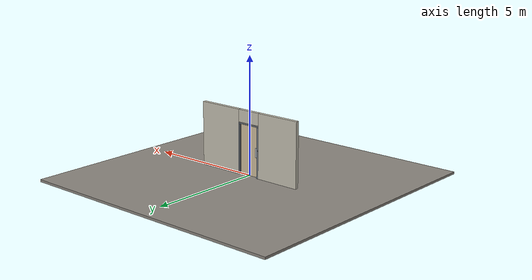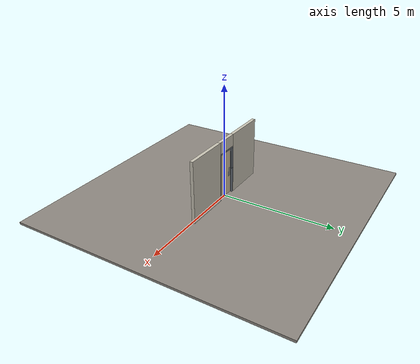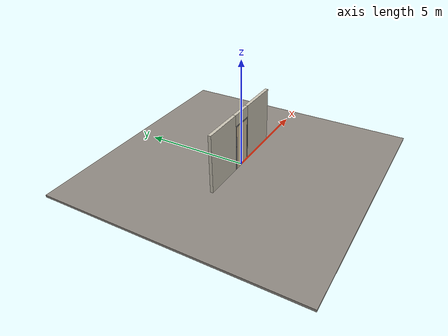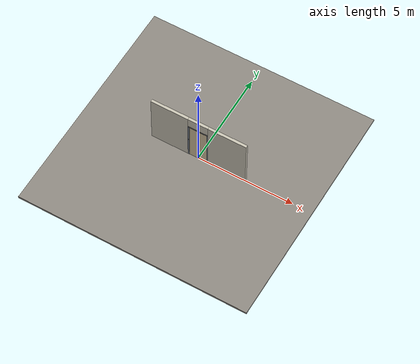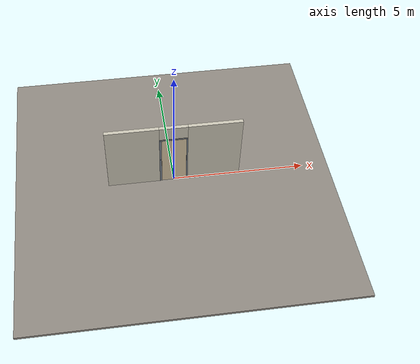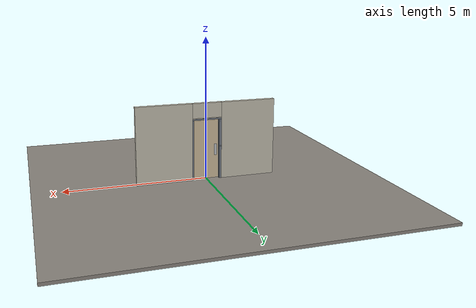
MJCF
<?xml version="1.0" ?>
<mujoco model="db0539_swing_single_minimal">
  <compiler angle="radian" meshdir="../../hardware" texturedir="../../textures" autolimits="true" inertiafromgeom="false"/>
  <option timestep="0.002" integrator="implicitfast" cone="elliptic" impratio="10" noslip_iterations="3">
    <flag multiccd="enable"/>
  </option>
  <size memory="16M"/>
  <default>
    <geom condim="4" solref="0.005 1" solimp="0.95 0.99 0.001"/>
    <joint solreflimit="0.005 1" solimplimit="0.95 0.99 0.001"/>
    <tendon solreflimit="0.005 1"/>
    <equality solref="0.002 1"/>
  </default>
  <visual>
    <headlight ambient="0.4 0.4 0.4" diffuse="0.7 0.7 0.7" specular="0.2 0.2 0.2"/>
    <quality shadowsize="4096"/>
    <map znear="0.01" zfar="60"/>
  </visual>
  <asset>
    <material name="mat_floor" rgba="0.55 0.53 0.5 1" specular="0.2" shininess="0.15" reflectance="0"/>
    <material name="mat_wall" rgba="0.78 0.76 0.7 1" specular="0.2" shininess="0.1" reflectance="0"/>
    <material name="mat_leaf" rgba="0.82 0.75 0.62 1" specular="0.23" shininess="0.45" reflectance="0.02"/>
    <material name="mat_hinge" rgba="0.65 0.66 0.68 1" specular="0.74" shininess="0.5" reflectance="0.36"/>
    <material name="mat_op_stainless" rgba="0.75 0.76 0.77 1" specular="0.8" shininess="0.65" reflectance="0.4"/>
    <material name="mat_deadbolt" rgba="0.85 0.66 0.3 1" specular="0.8" shininess="0.75" reflectance="0.4"/>
    <material name="mat_frame" rgba="0.45 0.48 0.52 1" specular="0.32" shininess="0.6" reflectance="0.08"/>
    <material name="mat_closer" rgba="0.22 0.17 0.13 1" specular="0.8" shininess="0.6" reflectance="0.4"/>
    <material name="mat_kick" rgba="0.75 0.76 0.77 1" specular="0.8" shininess="0.65" reflectance="0.4"/>
    <material name="mat_wallreader" rgba="0.05 0.05 0.05 1" specular="0.38" shininess="0.3" reflectance="0.12"/>
    <material name="mat_rex" rgba="0.1 0.6 0.2 1" specular="0.2" shininess="0.6" reflectance="0"/>
    <texture name="skybox" type="skybox" builtin="gradient" rgb1="0.6 0.7 0.85" rgb2="0.9 0.92 0.95" width="256" height="256"/>
  </asset>
  <worldbody>
    <light name="sun" pos="1.5 -2.5 4" dir="-0.3 0.5 -0.8" directional="true" diffuse="0.8 0.8 0.8" specular="0.3 0.3 0.3" castshadow="true"/>
    <light name="fill" pos="-1.5 2.5 3" dir="0.3 -0.5 -0.7" directional="true" diffuse="0.35 0.35 0.4" castshadow="false"/>
    <camera name="robot_view" pos="0 -2.594313 1.812087" xyaxes="1 0 0 0 0.26963 0.962964" fovy="52"/>
    <camera name="far_view" pos="0 2.681312 1.812087" xyaxes="-1 0 0 0 -0.26963 0.962964" fovy="52"/>
    <camera name="iso" pos="-2.004737 -2.172262 2.234138" xyaxes="0.741536 -0.670913 0 0.242917 0.268487 0.932151" fovy="46"/>
    <camera name="detail_handle" pos="-0.1735 -0.7565 1.32" xyaxes="0.97561 0.219512 0 -0.070934 0.315262 0.94635" fovy="38"/>
    <geom name="floor" type="box" size="6 6 0.05" pos="0 0 -0.05" material="mat_floor" group="0" contype="1" conaffinity="1" friction="0.8 0.005 0.0001" density="2400"/>
    <geom name="wall_left" type="box" size="0.97975 0.0725 1.3735" pos="-1.52025 0.0435 1.3735" material="mat_wall" group="0" contype="1" conaffinity="1" friction="0.6 0.005 0.0001" density="800"/>
    <geom name="wall_right" type="box" size="0.99475 0.0725 1.3735" pos="1.50525 0.0435 1.3735" material="mat_wall" group="0" contype="1" conaffinity="1" friction="0.6 0.005 0.0001" density="800"/>
    <geom name="wall_header" type="box" size="0.5255 0.0725 0.26" pos="-0.015 0.0435 2.487" material="mat_wall" group="0" contype="1" conaffinity="1" friction="0.6 0.005 0.0001" density="800"/>
    <geom name="jamb_hinge" type="box" size="0.025 0.0725 1.0735" pos="0.4855 0.0435 1.0735" material="mat_frame" group="0" contype="1" conaffinity="1" friction="0.6 0.005 0.0001" density="300"/>
    <geom name="strike_1180_wall_n" type="box" size="0.04 0.05325 0.0155" pos="-0.5005 0.06275 1.18" material="mat_frame" group="0" contype="1" conaffinity="1" friction="0.6 0.005 0.0001" density="300"/>
    <geom name="strike_1180_wall_p" type="box" size="0.04 0.00975 0.0155" pos="-0.5005 -0.01925 1.18" material="mat_frame" group="0" contype="1" conaffinity="1" friction="0.6 0.005 0.0001" density="300"/>
    <geom name="strike_1180_back" type="box" size="0.0253 0.0095 0.0155" pos="-0.5152 0 1.18" material="mat_frame" group="0" contype="1" conaffinity="1" friction="0.6 0.005 0.0001" density="300"/>
    <geom name="jamb_strike_0" type="box" size="0.04 0.0725 0.58225" pos="-0.5005 0.0435 0.58225" material="mat_frame" group="0" contype="1" conaffinity="1" friction="0.6 0.005 0.0001" density="300"/>
    <geom name="jamb_strike_1" type="box" size="0.04 0.0725 0.47575" pos="-0.5005 0.0435 1.67125" material="mat_frame" group="0" contype="1" conaffinity="1" friction="0.6 0.005 0.0001" density="300"/>
    <geom name="jamb_head" type="box" size="0.5255 0.0725 0.025" pos="-0.015 0.0435 2.172" material="mat_frame" group="0" contype="1" conaffinity="1" friction="0.6 0.005 0.0001" density="300"/>
    <geom name="head_stud" type="box" size="0.5255 0.0725 0.015" pos="-0.015 0.0435 2.212" material="mat_wall" group="0" contype="1" conaffinity="1" friction="0.6 0.005 0.0001" density="500"/>
    <geom name="stop_hinge" type="box" size="0.0055 0.016 1.0735" pos="0.455 0.0385 1.0735" material="mat_frame" group="0" contype="1" conaffinity="1" friction="0.6 0.005 0.0001" density="300"/>
    <geom name="stop_strike" type="box" size="0.0055 0.016 1.0735" pos="-0.455 0.0385 1.0735" material="mat_frame" group="0" contype="1" conaffinity="1" friction="0.6 0.005 0.0001" density="300"/>
    <geom name="stop_head" type="box" size="0.4605 0.016 0.0055" pos="0 0.0385 2.1415" material="mat_frame" group="0" contype="1" conaffinity="1" friction="0.6 0.005 0.0001" density="300"/>
    <site name="approach_point" pos="0 -1.5 0" quat="1 0 0 0" size="0.05" rgba="0.2 0.9 0.2 0.5" group="4"/>
    <site name="goal_point" pos="0 1.5 0" quat="1 0 0 0" size="0.05" rgba="0.2 0.9 0.2 0.5" group="4"/>
    <site name="door_plane_center" pos="0 0 1.0735" quat="1 0 0 0" size="0.02" rgba="0.2 0.9 0.2 0.5" group="4"/>
    <body name="leaf" pos="0.4605 0 0">
      <inertial pos="-0.464788 0.00031 1.07551" mass="41.801718" quat="0.500251 -0.499469 0.500516 0.499763" diaginertia="2.947403353 15.663083453 18.59661276"/>
      <joint name="leaf_hinge" type="hinge" axis="0 0 1" pos="-0.003 -0.029 0" limited="true" range="0 1.570796" damping="10.268966" frictionloss="0.652348" stiffness="11.911156" springref="-1.783202" armature="0.02"/>
      <geom name="leaf_slab" type="box" size="0.457 0.022 1.067" pos="-0.46 0 1.076" material="mat_leaf" group="0" contype="1" conaffinity="1" friction="0.4 0.005 0.0001" density="1"/>
      <geom name="leaf_push_plate_p" type="box" size="0.05 0.0008 0.2" pos="-0.812 0.0228 1.04" material="mat_op_stainless" group="1" contype="0" conaffinity="0" density="7900"/>
      <site name="leaf_push_plate_push_p" pos="-0.812 0.022 1.04" quat="1 0 0 0" size="0.012" rgba="0.2 0.9 0.2 0.5" group="4"/>
      <site name="leaf_edge_mid" pos="-0.917 0 1.067" quat="1 0 0 0" size="0.02" rgba="0.2 0.9 0.2 0.5" group="4"/>
    </body>
  </worldbody>
  <sensor>
    <jointpos name="leaf_hinge_pos" joint="leaf_hinge"/>
    <jointvel name="leaf_hinge_vel" joint="leaf_hinge"/>
  </sensor>
</mujoco>
